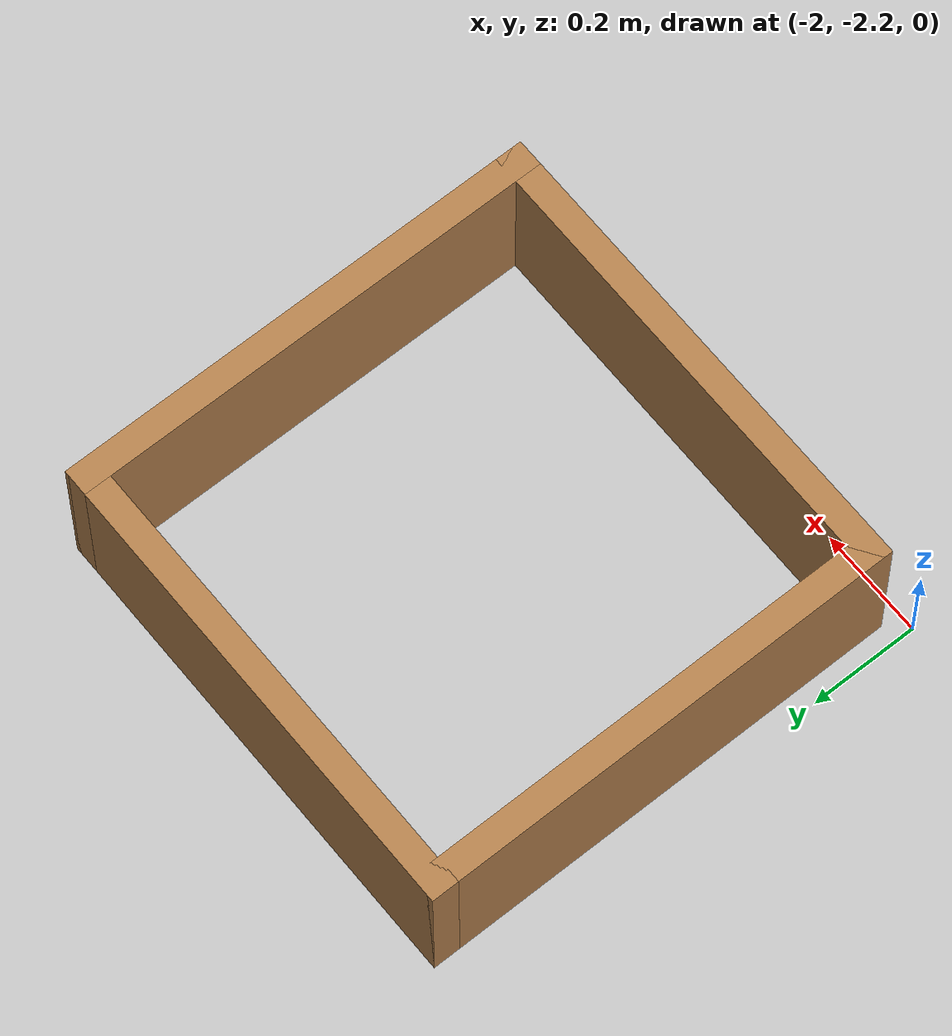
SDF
<?xml version='1.0'?>
<sdf version='1.7'>
  <model name='square90'>
    <pose>-0.9825 -1.0825 0 0 -0 0</pose>
    <link name='Wall_10'>
      <collision name='Wall_10_Collision'>
        <geometry>
          <box>
            <size>0.9 0.05 0.3</size>
          </box>
        </geometry>
        <pose>0 0 0.15 0 -0 0</pose>
      </collision>
      <visual name='Wall_10_Visual'>
        <pose>0 0 0.15 0 -0 0</pose>
        <geometry>
          <box>
            <size>0.9 0.05 0.3</size>
          </box>
        </geometry>
        <material>
          <script>
            <uri>file://media/materials/scripts/gazebo.material</uri>
            <name>Gazebo/Wood</name>
          </script>
          <ambient>1 1 1 1</ambient>
        </material>
        <meta>
          <layer>0</layer>
        </meta>
      </visual>
      <pose>-0.9575 -0.6325 0 0 -0 -1.5708</pose>
    </link>
    <link name='Wall_12'>
      <collision name='Wall_12_Collision'>
        <geometry>
          <box>
            <size>0.9 0.05 0.3</size>
          </box>
        </geometry>
        <pose>0 0 0.15 0 -0 0</pose>
      </collision>
      <visual name='Wall_12_Visual'>
        <pose>0 0 0.15 0 -0 0</pose>
        <geometry>
          <box>
            <size>0.9 0.05 0.3</size>
          </box>
        </geometry>
        <material>
          <script>
            <uri>file://media/materials/scripts/gazebo.material</uri>
            <name>Gazebo/Wood</name>
          </script>
          <ambient>1 1 1 1</ambient>
        </material>
        <meta>
          <layer>0</layer>
        </meta>
      </visual>
      <pose>-0.5325 -0.2075 0 0 -0 0</pose>
    </link>
    <link name='Wall_14'>
      <collision name='Wall_14_Collision'>
        <geometry>
          <box>
            <size>0.9 0.05 0.3</size>
          </box>
        </geometry>
        <pose>0 0 0.15 0 -0 0</pose>
      </collision>
      <visual name='Wall_14_Visual'>
        <pose>0 0 0.15 0 -0 0</pose>
        <geometry>
          <box>
            <size>0.9 0.05 0.3</size>
          </box>
        </geometry>
        <material>
          <script>
            <uri>file://media/materials/scripts/gazebo.material</uri>
            <name>Gazebo/Wood</name>
          </script>
          <ambient>1 1 1 1</ambient>
        </material>
        <meta>
          <layer>0</layer>
        </meta>
      </visual>
      <pose>-0.5325 -1.0575 0 0 -0 0</pose>
    </link>
    <link name='Wall_19'>
      <collision name='Wall_19_Collision'>
        <geometry>
          <box>
            <size>0.9 0.05 0.3</size>
          </box>
        </geometry>
        <pose>0 0 0.15 0 -0 0</pose>
      </collision>
      <visual name='Wall_19_Visual'>
        <pose>0 0 0.15 0 -0 0</pose>
        <geometry>
          <box>
            <size>0.9 0.05 0.3</size>
          </box>
        </geometry>
        <material>
          <script>
            <uri>file://media/materials/scripts/gazebo.material</uri>
            <name>Gazebo/Wood</name>
          </script>
          <ambient>1 1 1 1</ambient>
        </material>
        <meta>
          <layer>0</layer>
        </meta>
      </visual>
      <pose>-0.1075 -0.6325 0 0 -0 -1.5708</pose>
    </link>
    <static>1</static>
  </model>
</sdf>
